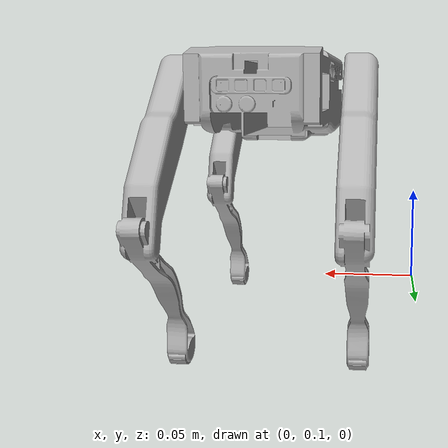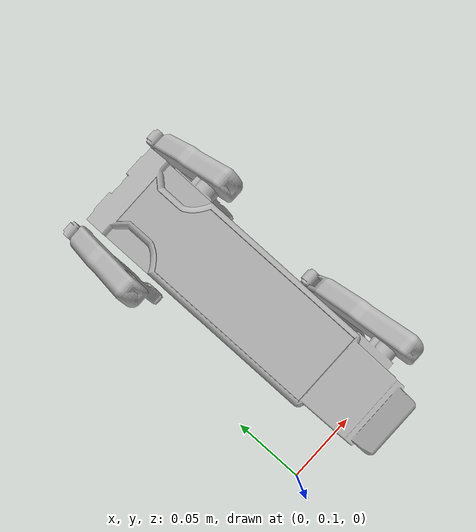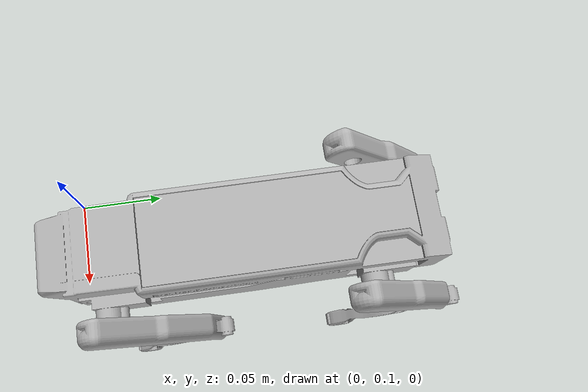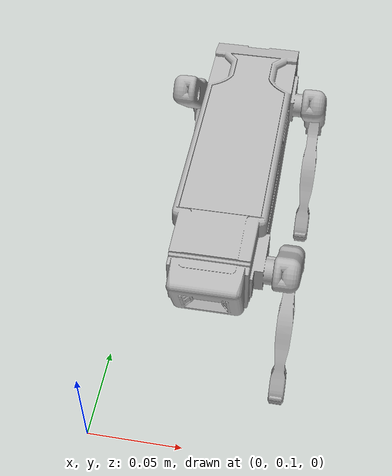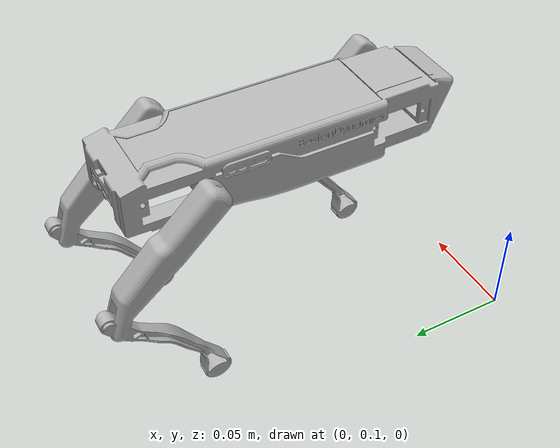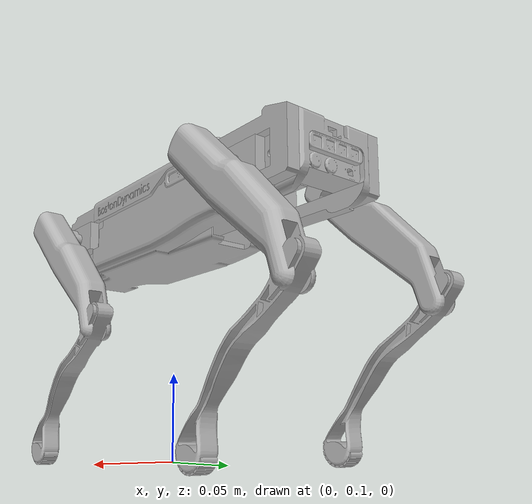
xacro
<?xml version="1.0" ?>
<robot name="spotURDF" xmlns:xacro="http://www.ros.org/wiki/xacro">

<xacro:include filename="$(find spotURDF_description)/urdf/materials.xacro" />
<xacro:include filename="$(find spotURDF_description)/urdf/spotURDF.trans" />
<xacro:include filename="$(find spotURDF_description)/urdf/spotURDF.gazebo" />
<link name="base_link">
  <inertial>
    <origin rpy="0 0 0" xyz="0.05971230943588049 0.1915410353054319 0.10379183049192559"/>
    <mass value="0.15593839458053116"/>
    <inertia ixx="0.000385" ixy="0.0" ixz="0.0" iyy="4.8e-05" iyz="-1.2e-05" izz="0.000403"/>
  </inertial>
  <visual>
    <origin rpy="0 0 0" xyz="0 0 0"/>
    <geometry>
      <mesh filename="package://spotURDF_description/meshes/base_link.stl" scale="0.001 0.001 0.001"/>
    </geometry>
    <material name="silver"/>
  </visual>
  <collision>
    <origin rpy="0 0 0" xyz="0 0 0"/>
    <geometry>
      <mesh filename="package://spotURDF_description/meshes/base_link.stl" scale="0.001 0.001 0.001"/>
    </geometry>
  </collision>
</link>

<link name="servo_1">
  <inertial>
    <origin rpy="0 0 0" xyz="-0.004038544658970675 0.013204850014472719 -0.00022426075196999018"/>
    <mass value="0.010362264661810883"/>
    <inertia ixx="1e-06" ixy="0.0" ixz="0.0" iyy="1e-06" iyz="-0.0" izz="1e-06"/>
  </inertial>
  <visual>
    <origin rpy="0 0 0" xyz="-0.07692 -0.129093 -0.105972"/>
    <geometry>
      <mesh filename="package://spotURDF_description/meshes/servo_1.stl" scale="0.001 0.001 0.001"/>
    </geometry>
    <material name="silver"/>
  </visual>
  <collision>
    <origin rpy="0 0 0" xyz="-0.07692 -0.129093 -0.105972"/>
    <geometry>
      <mesh filename="package://spotURDF_description/meshes/servo_1.stl" scale="0.001 0.001 0.001"/>
    </geometry>
  </collision>
</link>

<link name="servo__3__1">
  <inertial>
    <origin rpy="0 0 0" xyz="-0.004038365236444921 0.013205437003384363 -0.00022426047629711676"/>
    <mass value="0.010362264661810883"/>
    <inertia ixx="1e-06" ixy="0.0" ixz="0.0" iyy="1e-06" iyz="-0.0" izz="1e-06"/>
  </inertial>
  <visual>
    <origin rpy="0 0 0" xyz="-0.07696 -0.24309 -0.106709"/>
    <geometry>
      <mesh filename="package://spotURDF_description/meshes/servo__3__1.stl" scale="0.001 0.001 0.001"/>
    </geometry>
    <material name="silver"/>
  </visual>
  <collision>
    <origin rpy="0 0 0" xyz="-0.07696 -0.24309 -0.106709"/>
    <geometry>
      <mesh filename="package://spotURDF_description/meshes/servo__3__1.stl" scale="0.001 0.001 0.001"/>
    </geometry>
  </collision>
</link>

<link name="servo__1__1">
  <inertial>
    <origin rpy="0 0 0" xyz="0.004038365889253284 0.013204850014472663 0.0002247877672378884"/>
    <mass value="0.010362264661810883"/>
    <inertia ixx="1e-06" ixy="-0.0" ixz="0.0" iyy="1e-06" iyz="0.0" izz="1e-06"/>
  </inertial>
  <visual>
    <origin rpy="0 0 0" xyz="-0.04282 -0.129093 -0.105972"/>
    <geometry>
      <mesh filename="package://spotURDF_description/meshes/servo__1__1.stl" scale="0.001 0.001 0.001"/>
    </geometry>
    <material name="silver"/>
  </visual>
  <collision>
    <origin rpy="0 0 0" xyz="-0.04282 -0.129093 -0.105972"/>
    <geometry>
      <mesh filename="package://spotURDF_description/meshes/servo__1__1.stl" scale="0.001 0.001 0.001"/>
    </geometry>
  </collision>
</link>

<link name="servo__2__1">
  <inertial>
    <origin rpy="0 0 0" xyz="0.004038365889253395 0.013205437003384474 0.00022478804291048426"/>
    <mass value="0.010362264661810883"/>
    <inertia ixx="1e-06" ixy="-0.0" ixz="0.0" iyy="1e-06" iyz="0.0" izz="1e-06"/>
  </inertial>
  <visual>
    <origin rpy="0 0 0" xyz="-0.04272 -0.24309 -0.106709"/>
    <geometry>
      <mesh filename="package://spotURDF_description/meshes/servo__2__1.stl" scale="0.001 0.001 0.001"/>
    </geometry>
    <material name="silver"/>
  </visual>
  <collision>
    <origin rpy="0 0 0" xyz="-0.04272 -0.24309 -0.106709"/>
    <geometry>
      <mesh filename="package://spotURDF_description/meshes/servo__2__1.stl" scale="0.001 0.001 0.001"/>
    </geometry>
  </collision>
</link>

<link name="fr_leg_1">
  <inertial>
    <origin rpy="0 0 0" xyz="-0.005828531513050319 0.014049939833651048 -0.027769452214174692"/>
    <mass value="0.02306397378886889"/>
    <inertia ixx="2.3e-05" ixy="-0.0" ixz="-0.0" iyy="1.8e-05" iyz="1e-06" izz="6e-06"/>
  </inertial>
  <visual>
    <origin rpy="0 0 0" xyz="-0.03204 -0.13723 -0.106196"/>
    <geometry>
      <mesh filename="package://spotURDF_description/meshes/fr_leg_1.stl" scale="0.001 0.001 0.001"/>
    </geometry>
    <material name="silver"/>
  </visual>
  <collision>
    <origin rpy="0 0 0" xyz="-0.03204 -0.13723 -0.106196"/>
    <geometry>
      <mesh filename="package://spotURDF_description/meshes/fr_leg_1.stl" scale="0.001 0.001 0.001"/>
    </geometry>
  </collision>
</link>

<link name="fl_leg_1">
  <inertial>
    <origin rpy="0 0 0" xyz="0.005828352048753149 0.013044620216436043 -0.0282560129079764"/>
    <mass value="0.02306393986938087"/>
    <inertia ixx="2.3e-05" ixy="0.0" ixz="0.0" iyy="1.8e-05" iyz="0.0" izz="6e-06"/>
  </inertial>
  <visual>
    <origin rpy="0 0 0" xyz="-0.0877 -0.13723 -0.105748"/>
    <geometry>
      <mesh filename="package://spotURDF_description/meshes/fl_leg_1.stl" scale="0.001 0.001 0.001"/>
    </geometry>
    <material name="silver"/>
  </visual>
  <collision>
    <origin rpy="0 0 0" xyz="-0.0877 -0.13723 -0.105748"/>
    <geometry>
      <mesh filename="package://spotURDF_description/meshes/fl_leg_1.stl" scale="0.001 0.001 0.001"/>
    </geometry>
  </collision>
</link>

<link name="fl_leg__1__1">
  <inertial>
    <origin rpy="0 0 0" xyz="0.005828531471279166 0.014739240692406896 -0.02741050389011923"/>
    <mass value="0.02306393986938087"/>
    <inertia ixx="2.3e-05" ixy="0.0" ixz="0.0" iyy="1.7e-05" iyz="1e-06" izz="6e-06"/>
  </inertial>
  <visual>
    <origin rpy="0 0 0" xyz="-0.08774 -0.251227 -0.106485"/>
    <geometry>
      <mesh filename="package://spotURDF_description/meshes/fl_leg__1__1.stl" scale="0.001 0.001 0.001"/>
    </geometry>
    <material name="silver"/>
  </visual>
  <collision>
    <origin rpy="0 0 0" xyz="-0.08774 -0.251227 -0.106485"/>
    <geometry>
      <mesh filename="package://spotURDF_description/meshes/fl_leg__1__1.stl" scale="0.001 0.001 0.001"/>
    </geometry>
  </collision>
</link>

<link name="rr_leg_1">
  <inertial>
    <origin rpy="0 0 0" xyz="-0.005828531513050374 0.013172479995305464 -0.028196535474165382"/>
    <mass value="0.02306397378886889"/>
    <inertia ixx="2.3e-05" ixy="-0.0" ixz="-0.0" iyy="1.8e-05" iyz="0.0" izz="6e-06"/>
  </inertial>
  <visual>
    <origin rpy="0 0 0" xyz="-0.03194 -0.251227 -0.106933"/>
    <geometry>
      <mesh filename="package://spotURDF_description/meshes/rr_leg_1.stl" scale="0.001 0.001 0.001"/>
    </geometry>
    <material name="silver"/>
  </visual>
  <collision>
    <origin rpy="0 0 0" xyz="-0.03194 -0.251227 -0.106933"/>
    <geometry>
      <mesh filename="package://spotURDF_description/meshes/rr_leg_1.stl" scale="0.001 0.001 0.001"/>
    </geometry>
  </collision>
</link>

<link name="lid_1">
  <inertial>
    <origin rpy="0 0 0" xyz="0.0152823789173697 -0.03282391466918336 0.0010028365291432084"/>
    <mass value="0.01247391983033411"/>
    <inertia ixx="1.2e-05" ixy="-0.0" ixz="0.0" iyy="1e-06" iyz="0.0" izz="1.3e-05"/>
  </inertial>
  <visual>
    <origin rpy="0 0 0" xyz="-0.04454 -0.23975 -0.119878"/>
    <geometry>
      <mesh filename="package://spotURDF_description/meshes/lid_1.stl" scale="0.001 0.001 0.001"/>
    </geometry>
    <material name="silver"/>
  </visual>
  <collision>
    <origin rpy="0 0 0" xyz="-0.04454 -0.23975 -0.119878"/>
    <geometry>
      <mesh filename="package://spotURDF_description/meshes/lid_1.stl" scale="0.001 0.001 0.001"/>
    </geometry>
  </collision>
</link>

<joint name="Rigid1" type="fixed">
  <origin rpy="0 0 0" xyz="0.07692 0.129093 0.105972"/>
  <parent link="base_link"/>
  <child link="servo_1"/>
</joint>

<joint name="Rigid2" type="fixed">
  <origin rpy="0 0 0" xyz="0.07696 0.24309 0.106709"/>
  <parent link="base_link"/>
  <child link="servo__3__1"/>
</joint>

<joint name="Rigid3" type="fixed">
  <origin rpy="0 0 0" xyz="0.04282 0.129093 0.105972"/>
  <parent link="base_link"/>
  <child link="servo__1__1"/>
</joint>

<joint name="Rigid4" type="fixed">
  <origin rpy="0 0 0" xyz="0.04272 0.24309 0.106709"/>
  <parent link="base_link"/>
  <child link="servo__2__1"/>
</joint>

<joint name="Rev5" type="revolute">
  <origin rpy="0 0 0" xyz="-0.01078 0.008137 0.000224"/>
  <parent link="servo__1__1"/>
  <child link="fr_leg_1"/>
  <axis xyz="-1.0 -0.0 0.0"/>
  <limit effort="100" lower="-1.745329" upper="2.007129" velocity="100"/>
</joint>

<joint name="Rev6" type="revolute">
  <origin rpy="0 0 0" xyz="0.01078 0.008137 -0.000224"/>
  <parent link="servo_1"/>
  <child link="fl_leg_1"/>
  <axis xyz="1.0 -0.0 -0.0"/>
  <limit effort="100" lower="-2.007129" upper="1.745329" velocity="100"/>
</joint>

<joint name="Rev7" type="revolute">
  <origin rpy="0 0 0" xyz="0.01078 0.008137 -0.000224"/>
  <parent link="servo__3__1"/>
  <child link="fl_leg__1__1"/>
  <axis xyz="1.0 -0.0 0.0"/>
  <limit effort="100" lower="-1.745329" upper="2.268928" velocity="100"/>
</joint>

<joint name="Rev8" type="revolute">
  <origin rpy="0 0 0" xyz="-0.01078 0.008137 0.000224"/>
  <parent link="servo__2__1"/>
  <child link="rr_leg_1"/>
  <axis xyz="-1.0 -0.0 -0.0"/>
  <limit effort="100" lower="-2.268928" upper="1.745329" velocity="100"/>
</joint>

<joint name="Rigid9" type="fixed">
  <origin rpy="0 0 0" xyz="0.04454 0.23975 0.119878"/>
  <parent link="base_link"/>
  <child link="lid_1"/>
</joint>

</robot>

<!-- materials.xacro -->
<robot name="spotURDF" xmlns:xacro="http://www.ros.org/wiki/xacro" >

<material name="silver">
  <color rgba="0.700 0.700 0.700 1.000"/>
</material>

</robot>

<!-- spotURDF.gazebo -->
<robot name="spotURDF" xmlns:xacro="http://www.ros.org/wiki/xacro" >

<xacro:property name="body_color" value="Gazebo/Silver" />

<gazebo>
  <plugin filename="libgazebo_ros_control.so" name="control"/>
</gazebo>
<gazebo reference="base_link">
  <material>${body_color}</material>
  <mu1>0.2</mu1>
  <mu2>0.2</mu2>
  <selfCollide>true</selfCollide>
  <gravity>true</gravity>
</gazebo>

<gazebo reference="servo_1">
  <material>${body_color}</material>
  <mu1>0.2</mu1>
  <mu2>0.2</mu2>
  <selfCollide>true</selfCollide>
</gazebo>

<gazebo reference="servo__3__1">
  <material>${body_color}</material>
  <mu1>0.2</mu1>
  <mu2>0.2</mu2>
  <selfCollide>true</selfCollide>
</gazebo>

<gazebo reference="servo__1__1">
  <material>${body_color}</material>
  <mu1>0.2</mu1>
  <mu2>0.2</mu2>
  <selfCollide>true</selfCollide>
</gazebo>

<gazebo reference="servo__2__1">
  <material>${body_color}</material>
  <mu1>0.2</mu1>
  <mu2>0.2</mu2>
  <selfCollide>true</selfCollide>
</gazebo>

<gazebo reference="fr_leg_1">
  <material>${body_color}</material>
  <mu1>0.2</mu1>
  <mu2>0.2</mu2>
  <selfCollide>true</selfCollide>
</gazebo>

<gazebo reference="fl_leg_1">
  <material>${body_color}</material>
  <mu1>0.2</mu1>
  <mu2>0.2</mu2>
  <selfCollide>true</selfCollide>
</gazebo>

<gazebo reference="fl_leg__1__1">
  <material>${body_color}</material>
  <mu1>0.2</mu1>
  <mu2>0.2</mu2>
  <selfCollide>true</selfCollide>
</gazebo>

<gazebo reference="rr_leg_1">
  <material>${body_color}</material>
  <mu1>0.2</mu1>
  <mu2>0.2</mu2>
  <selfCollide>true</selfCollide>
</gazebo>

<gazebo reference="lid_1">
  <material>${body_color}</material>
  <mu1>0.2</mu1>
  <mu2>0.2</mu2>
  <selfCollide>true</selfCollide>
</gazebo>

</robot>
